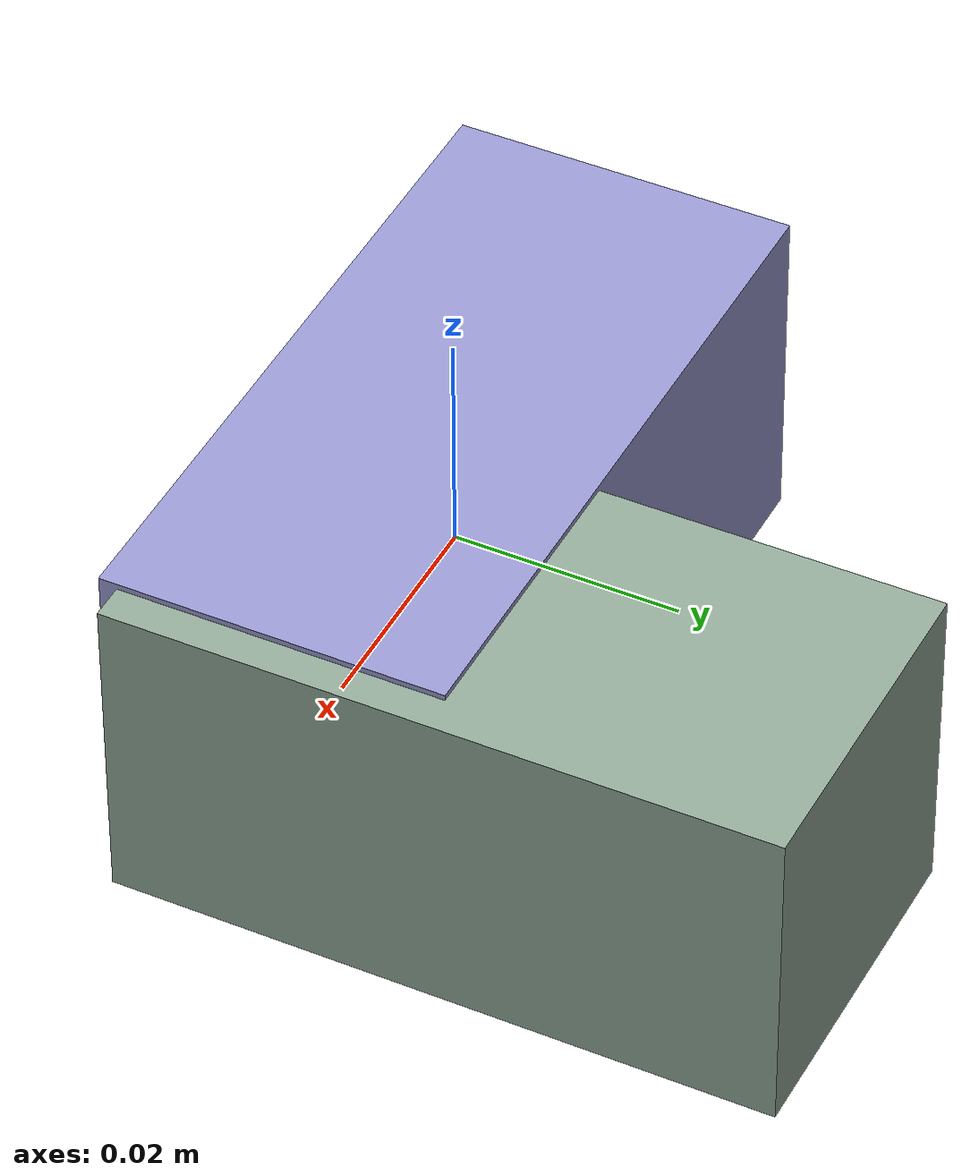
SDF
<sdf version="1.4"><world name="default"><model name="object0"><link name="link1"><pose>0 0 0 0 0 0</pose><inertial><pose>0 0 0 0 0 0</pose><mass>0.03389495386799131</mass><inertia><ixx>5.084243080198696e-06</ixx><ixy>0</ixy><iyy>1.3670615022440188e-05</iyy><ixz>0</ixz><iyz>0</iyz><izz>1.3670615022440188e-05</izz></inertia></inertial><visual name="link1_visual"><pose>0 0  0 0 0 0</pose><geometry><box><size>0.0627684330888728 0.03 0.03</size></box></geometry><material><diffuse>0.5960241702903234 0.5957586193774629 0.8148565289503122 1</diffuse></material></visual><collision><pose>0 0  0 0 0 0</pose><geometry><box><size>0.0627684330888728 0.03 0.03</size></box></geometry></collision></link><link name="link2"><pose>0.01951995445357098 0.015694385244010227 0 0 0 0</pose><inertial><pose>0 0 0 0 0 0</pose><mass>0.03142813972944186</mass><inertia><ixx>1.1073888677519785e-05</ixx><ixy>0</ixy><iyy>4.559699272413189e-06</iyy><ixz>0</ixz><iyz>0</iyz><izz>1.1228410364522875e-05</izz></inertia></inertial><visual name="link2_visual"><pose>0 0  0 0 0 0</pose><geometry><box><size>0.03 0.058200258758225674 0.028999999999999998</size></box></geometry><material><diffuse>0.5707514337953581 0.6597448604892449 0.5939099661214251 1</diffuse></material></visual><collision><pose>0 0  0 0 0 0</pose><geometry><box><size>0.03 0.058200258758225674 0.028999999999999998</size></box></geometry></collision></link><joint name="link_joint_0" type="fixed"><parent>link1</parent><child>link2</child><pose>0 0 0 0 0 0</pose><axis><xyz>0 0 1</xyz></axis></joint></model></world></sdf>
